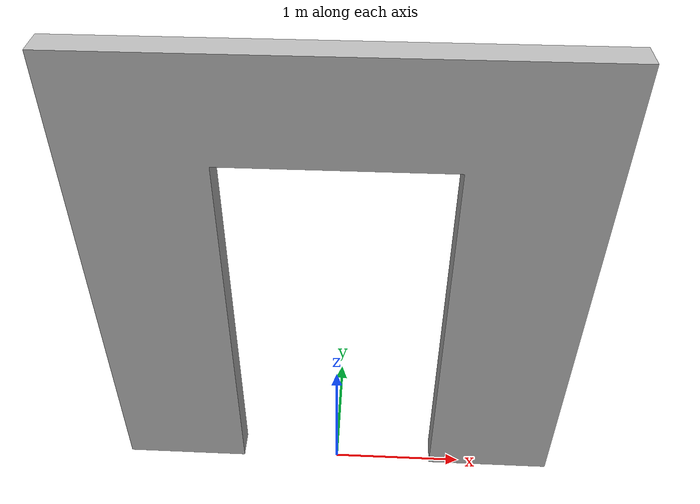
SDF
<?xml version="1.0"?>
<sdf version="1.5">
    <model name="house2_small">
        <static>true</static>
        <link name="link">
            <collision name="collision1">
                <pose>0 0 0 0 0 0</pose>
                <geometry>
                    <mesh>
                        <uri>model://house_scene_1_wall_w_door_small/meshes/scene_1_wall_w_door_small.dae</uri>
                    </mesh>
                </geometry>
            </collision>
            <visual name="visual_walls2">
              <pose>0 0 0 0 0 0</pose>
              <geometry>
              <mesh>
                 <uri>model://house_scene_1_wall_w_door_small/meshes/scene_1_wall_w_door_small.dae</uri>
              </mesh>
              </geometry>
              <material>
                  <script>
                      <uri>model://house_scene_1_wall_w_door_small/materials/scripts</uri>
                      <uri>model://house_scene_1_wall_w_door_small/materials/textures</uri>
                      <name>houseMat/Diffuse</name>
                  </script>
              </material>
             </visual>

        </link>
    </model>
</sdf>
